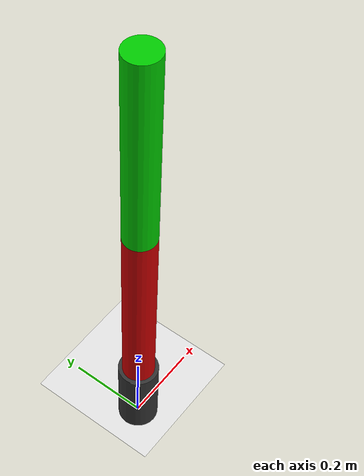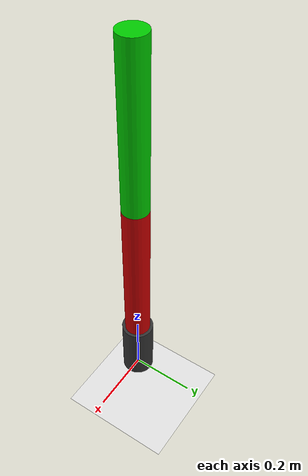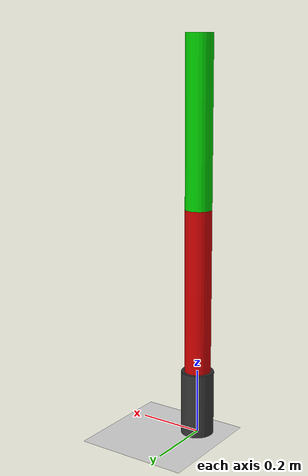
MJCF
<mujoco model="rrbot_position_control">
    <compiler angle="degree" coordinate="local"/>
    <option gravity="0 0 -9.81" integrator="RK4" timestep="0.01"/>

    <worldbody>
        <light directional="true" diffuse=".8 .8 .8" pos="0 0 5" dir="0 0 -1"/>
        <geom name="floor" type="plane" size="5 5 .1" rgba=".9 .9 .9 1"/>

        <body name="base" pos="0 0 0.1">
            <geom name="base_geom" type="cylinder" size="0.05 0.1" rgba="0.2 0.2 0.2 1"/>

            <body name="link1" pos="0 0 0.1">
                <joint name="joint1" type="hinge" axis="0 1 0" pos="0 0 0" range="-180 180"/>
                <geom name="link1_geom" type="cylinder" size="0.04 0.25" pos="0 0 0.25" rgba="0.8 0 0 1"/>

                <body name="link2" pos="0 0 0.5">
                    <joint name="joint2" type="hinge" axis="0 1 0" pos="0 0 0" range="-180 180"/>
                    <geom name="link2_geom" type="cylinder" size="0.04 0.25" pos="0 0 0.25" rgba="0 0.8 0 1"/>
                </body>
            </body>
        </body>
    </worldbody>

    <actuator>
        <position name="pos1" joint="joint1" kp="500" kv="50" ctrlrange="-180 180" forcelimited="true" forcerange="-200 200"/>
        <position name="pos2" joint="joint2" kp="300" kv="30" ctrlrange="-180 180" forcelimited="true" forcerange="-100 100"/>
    </actuator>
</mujoco>
